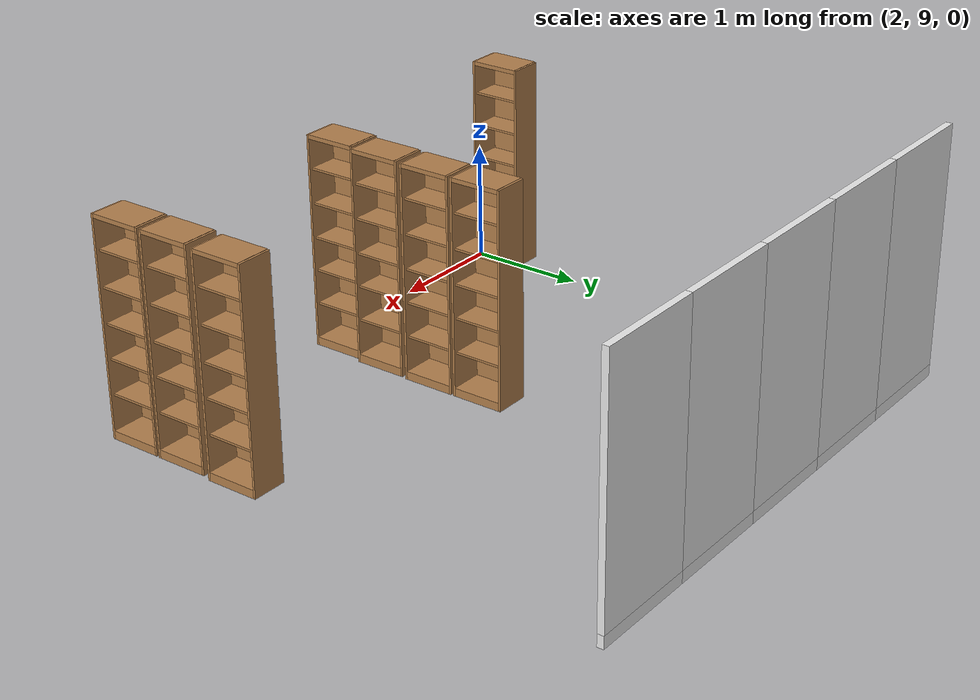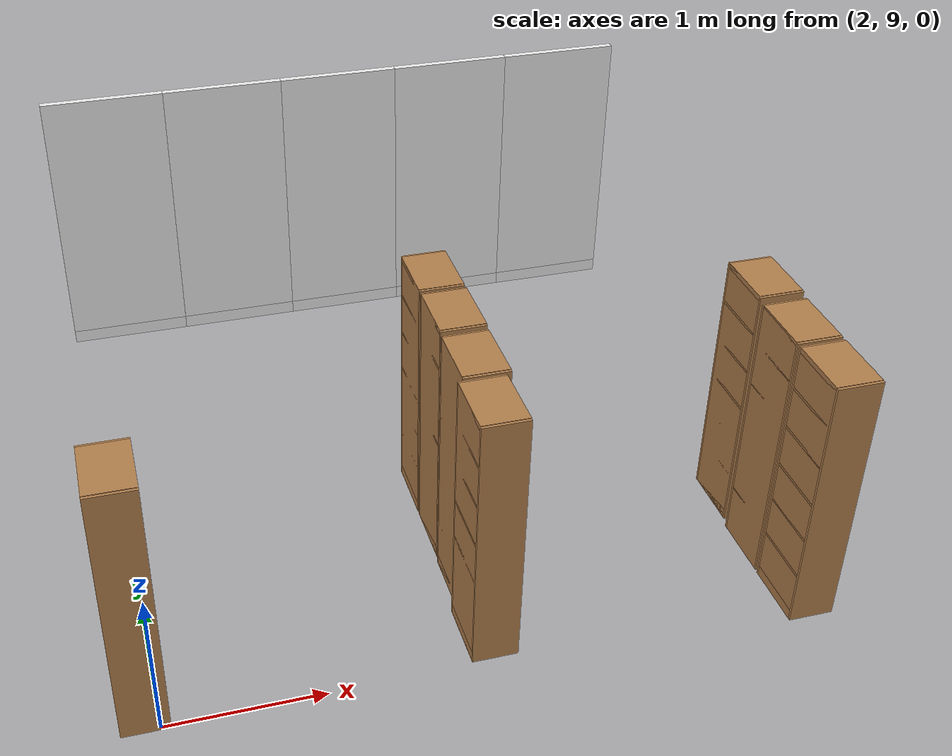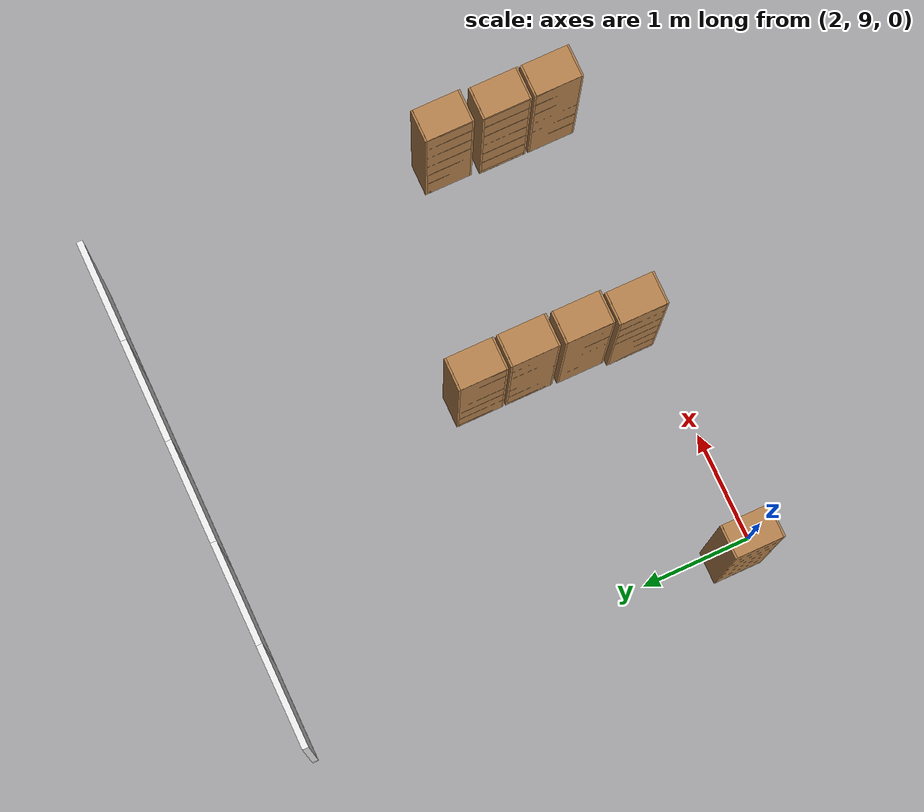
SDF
<sdf version="1.6">
 <world name="robocup_apartment">
  <model name="wall_x03y16">
   <link name="link">
    <inertial>
     <mass>50</mass>
     <inertia><ixx>1</ixx><ixy>0</ixy><ixz>0</ixz><iyy>1</iyy><iyz>0</iyz><izz>1</izz></inertia>
    </inertial>
    <visual name="bottom_frame">
     <pose>0 0 0.05 0 -0 0</pose>
     <geometry><box><size>0.055 0.9 0.1</size></box></geometry>
     <material>
      <script><uri>model://base_materials/color/scripts</uri><name>hsr_color/white</name></script>
     </material>
    </visual>
    <visual name="wall">
     <pose>0 0 1.095 0 -0 0</pose>
     <geometry><box><size>0.055 0.9 1.99</size></box></geometry>
     <material>
      <script>
       <uri>model://base_materials/wall/scripts</uri>
       <uri>model://base_materials/wall/textures</uri>
       <name>wall/white_noise</name>
      </script>
     </material>
    </visual>
    <velocity_decay><linear>0</linear><angular>0</angular></velocity_decay>
   </link>
   <static>1</static>
   <pose>2.25 13.2075 0 0 -0 1.5708</pose>
  </model>
  <model name="wall_x04y16">
   <link name="link">
    <inertial>
     <mass>50</mass>
     <inertia><ixx>1</ixx><ixy>0</ixy><ixz>0</ixz><iyy>1</iyy><iyz>0</iyz><izz>1</izz></inertia>
    </inertial>
    <visual name="bottom_frame">
     <pose>0 0 0.05 0 -0 0</pose>
     <geometry><box><size>0.055 0.9 0.1</size></box></geometry>
     <material>
      <script><uri>model://base_materials/color/scripts</uri><name>hsr_color/white</name></script>
     </material>
    </visual>
    <visual name="wall">
     <pose>0 0 1.095 0 -0 0</pose>
     <geometry><box><size>0.055 0.9 1.99</size></box></geometry>
     <material>
      <script>
       <uri>model://base_materials/wall/scripts</uri>
       <uri>model://base_materials/wall/textures</uri>
       <name>wall/white_noise</name>
      </script>
     </material>
    </visual>
    <velocity_decay><linear>0</linear><angular>0</angular></velocity_decay>
   </link>
   <static>1</static>
   <pose>3.15 13.2075 0 0 -0 1.5708</pose>
  </model>
  <model name="wall_x05y16">
   <link name="link">
    <inertial>
     <mass>50</mass>
     <inertia><ixx>1</ixx><ixy>0</ixy><ixz>0</ixz><iyy>1</iyy><iyz>0</iyz><izz>1</izz></inertia>
    </inertial>
    <visual name="bottom_frame">
     <pose>0 0 0.05 0 -0 0</pose>
     <geometry><box><size>0.055 0.9 0.1</size></box></geometry>
     <material>
      <script><uri>model://base_materials/color/scripts</uri><name>hsr_color/white</name></script>
     </material>
    </visual>
    <visual name="wall">
     <pose>0 0 1.095 0 -0 0</pose>
     <geometry><box><size>0.055 0.9 1.99</size></box></geometry>
     <material>
      <script>
       <uri>model://base_materials/wall/scripts</uri>
       <uri>model://base_materials/wall/textures</uri>
       <name>wall/white_noise</name>
      </script>
     </material>
    </visual>
    <velocity_decay><linear>0</linear><angular>0</angular></velocity_decay>
   </link>
   <static>1</static>
   <pose>4.05 13.2075 0 0 -0 1.5708</pose>
  </model>
  <model name="wall_x06y16">
   <link name="link">
    <inertial>
     <mass>50</mass>
     <inertia><ixx>1</ixx><ixy>0</ixy><ixz>0</ixz><iyy>1</iyy><iyz>0</iyz><izz>1</izz></inertia>
    </inertial>
    <visual name="bottom_frame">
     <pose>0 0 0.05 0 -0 0</pose>
     <geometry><box><size>0.055 0.9 0.1</size></box></geometry>
     <material>
      <script><uri>model://base_materials/color/scripts</uri><name>hsr_color/white</name></script>
     </material>
    </visual>
    <visual name="wall">
     <pose>0 0 1.095 0 -0 0</pose>
     <geometry><box><size>0.055 0.9 1.99</size></box></geometry>
     <material>
      <script>
       <uri>model://base_materials/wall/scripts</uri>
       <uri>model://base_materials/wall/textures</uri>
       <name>wall/white_noise</name>
      </script>
     </material>
    </visual>
    <velocity_decay><linear>0</linear><angular>0</angular></velocity_decay>
   </link>
   <static>1</static>
   <pose>4.95 13.2075 0 0 -0 1.5708</pose>
  </model>
  <model name="wall_x07y16">
   <link name="link">
    <inertial>
     <mass>50</mass>
     <inertia><ixx>1</ixx><ixy>0</ixy><ixz>0</ixz><iyy>1</iyy><iyz>0</iyz><izz>1</izz></inertia>
    </inertial>
    <visual name="bottom_frame">
     <pose>0 0 0.05 0 -0 0</pose>
     <geometry><box><size>0.055 0.9 0.1</size></box></geometry>
     <material>
      <script><uri>model://base_materials/color/scripts</uri><name>hsr_color/white</name></script>
     </material>
    </visual>
    <visual name="wall">
     <pose>0 0 1.095 0 -0 0</pose>
     <geometry><box><size>0.055 0.9 1.99</size></box></geometry>
     <material>
      <script>
       <uri>model://base_materials/wall/scripts</uri>
       <uri>model://base_materials/wall/textures</uri>
       <name>wall/white_noise</name>
      </script>
     </material>
    </visual>
    <velocity_decay><linear>0</linear><angular>0</angular></velocity_decay>
   </link>
   <static>1</static>
   <pose>5.85 13.2075 0 0 -0 1.5708</pose>
  </model>
  <model name="high_shelf05_clone_4">
   <link name="link">
    <inertial>
     <mass>5</mass>
     <inertia><ixx>1</ixx><ixy>0</ixy><ixz>0</ixz><iyy>1</iyy><iyz>0</iyz><izz>1</izz></inertia>
    </inertial>
    <visual name="left_board">
     <pose>-0.1475 0.009 0.898 0 -0 0</pose>
     <geometry><box><size>0.295 0.018 1.796</size></box></geometry>
     <material>
      <script>
       <uri>model://base_materials/wood/scripts</uri>
       <uri>model://base_materials/wood/textures</uri>
       <name>base_materials/light_wood</name>
      </script>
     </material>
    </visual>
    <collision name="collision_left_board">
     <pose>-0.1475 0.009 0.898 0 -0 0</pose>
     <geometry><box><size>0.295 0.018 1.796</size></box></geometry>
    </collision>
    <visual name="right_board">
     <pose>-0.1475 0.441 0.898 0 -0 0</pose>
     <geometry><box><size>0.295 0.018 1.796</size></box></geometry>
     <material>
      <script>
       <uri>model://base_materials/wood/scripts</uri>
       <uri>model://base_materials/wood/textures</uri>
       <name>base_materials/light_wood</name>
      </script>
     </material>
    </visual>
    <collision name="collision_right_board">
     <pose>-0.1475 0.441 0.898 0 -0 0</pose>
     <geometry><box><size>0.295 0.018 1.796</size></box></geometry>
    </collision>
    <visual name="top_board">
     <pose>-0.1475 0.225 1.7825 0 -0 0</pose>
     <geometry><box><size>0.295 0.414 0.035</size></box></geometry>
     <material>
      <script>
       <uri>model://base_materials/wood/scripts</uri>
       <uri>model://base_materials/wood/textures</uri>
       <name>base_materials/light_wood</name>
      </script>
     </material>
    </visual>
    <collision name="collision_top_board">
     <pose>-0.1475 0.225 1.7825 0 -0 0</pose>
     <geometry><box><size>0.295 0.414 0.035</size></box></geometry>
    </collision>
    <visual name="1st_shelf">
     <pose>-0.162 0.225 1.51 0 -0 0</pose>
     <geometry><box><size>0.266 0.414 0.018</size></box></geometry>
     <material>
      <script>
       <uri>model://base_materials/wood/scripts</uri>
       <uri>model://base_materials/wood/textures</uri>
       <name>base_materials/light_wood</name>
      </script>
     </material>
    </visual>
    <collision name="collision_1st_shelf">
     <pose>-0.162 0.225 1.51 0 -0 0</pose>
     <geometry><box><size>0.266 0.414 0.018</size></box></geometry>
    </collision>
    <visual name="2nd_shelf">
     <pose>-0.162 0.225 1.22 0 -0 0</pose>
     <geometry><box><size>0.266 0.414 0.018</size></box></geometry>
     <material>
      <script>
       <uri>model://base_materials/wood/scripts</uri>
       <uri>model://base_materials/wood/textures</uri>
       <name>base_materials/light_wood</name>
      </script>
     </material>
    </visual>
    <collision name="collision_2nd_shelf">
     <pose>-0.162 0.225 1.22 0 -0 0</pose>
     <geometry><box><size>0.266 0.414 0.018</size></box></geometry>
    </collision>
    <visual name="3rd_shelf">
     <pose>-0.162 0.225 0.93 0 -0 0</pose>
     <geometry><box><size>0.266 0.414 0.018</size></box></geometry>
     <material>
      <script>
       <uri>model://base_materials/wood/scripts</uri>
       <uri>model://base_materials/wood/textures</uri>
       <name>base_materials/light_wood</name>
      </script>
     </material>
    </visual>
    <collision name="collision_3rd_shelf">
     <pose>-0.162 0.225 0.93 0 -0 0</pose>
     <geometry><box><size>0.266 0.414 0.018</size></box></geometry>
    </collision>
    <visual name="4th_shelf">
     <pose>-0.162 0.225 0.65 0 -0 0</pose>
     <geometry><box><size>0.266 0.414 0.018</size></box></geometry>
     <material>
      <script>
       <uri>model://base_materials/wood/scripts</uri>
       <uri>model://base_materials/wood/textures</uri>
       <name>base_materials/light_wood</name>
      </script>
     </material>
    </visual>
    <collision name="collision_4th_shelf">
     <pose>-0.162 0.225 0.65 0 -0 0</pose>
     <geometry><box><size>0.266 0.414 0.018</size></box></geometry>
    </collision>
    <visual name="5th_shelf">
     <pose>-0.162 0.225 0.36 0 -0 0</pose>
     <geometry><box><size>0.266 0.414 0.018</size></box></geometry>
     <material>
      <script>
       <uri>model://base_materials/wood/scripts</uri>
       <uri>model://base_materials/wood/textures</uri>
       <name>base_materials/light_wood</name>
      </script>
     </material>
    </visual>
    <collision name="collision_5th_shelf">
     <pose>-0.162 0.225 0.36 0 -0 0</pose>
     <geometry><box><size>0.266 0.414 0.018</size></box></geometry>
    </collision>
    <visual name="bottom_board">
     <pose>-0.1475 0.225 0.035 0 -0 0</pose>
     <geometry><box><size>0.295 0.414 0.07</size></box></geometry>
     <material>
      <script>
       <uri>model://base_materials/wood/scripts</uri>
       <uri>model://base_materials/wood/textures</uri>
       <name>base_materials/light_wood</name>
      </script>
     </material>
    </visual>
    <collision name="collision_bottom_board">
     <pose>-0.1475 0.225 0.035 0 -0 0</pose>
     <geometry><box><size>0.295 0.414 0.07</size></box></geometry>
    </collision>
    <visual name="back_board">
     <pose>-0.286 0.225 0.898 0 -0 0</pose>
     <geometry><box><size>0.018 0.414 1.796</size></box></geometry>
     <material>
      <script>
       <uri>model://base_materials/wood/scripts</uri>
       <uri>model://base_materials/wood/textures</uri>
       <name>base_materials/light_wood</name>
      </script>
     </material>
    </visual>
    <collision name="collision_back_board">
     <pose>-0.286 0.225 0.898 0 -0 0</pose>
     <geometry><box><size>0.018 0.414 1.796</size></box></geometry>
    </collision>
    <velocity_decay><linear>0</linear><angular>0</angular></velocity_decay>
   </link>
   <static>1</static>
   <pose>2.06128 8.98276 0 0 -0 0</pose>
  </model>
  <model name="high_shelf05_clone_7">
   <link name="link">
    <inertial>
     <mass>5</mass>
     <inertia><ixx>1</ixx><ixy>0</ixy><ixz>0</ixz><iyy>1</iyy><iyz>0</iyz><izz>1</izz></inertia>
    </inertial>
    <visual name="left_board">
     <pose>-0.1475 0.009 0.898 0 -0 0</pose>
     <geometry><box><size>0.295 0.018 1.796</size></box></geometry>
     <material>
      <script>
       <uri>model://base_materials/wood/scripts</uri>
       <uri>model://base_materials/wood/textures</uri>
       <name>base_materials/light_wood</name>
      </script>
     </material>
    </visual>
    <collision name="collision_left_board">
     <pose>-0.1475 0.009 0.898 0 -0 0</pose>
     <geometry><box><size>0.295 0.018 1.796</size></box></geometry>
    </collision>
    <visual name="right_board">
     <pose>-0.1475 0.441 0.898 0 -0 0</pose>
     <geometry><box><size>0.295 0.018 1.796</size></box></geometry>
     <material>
      <script>
       <uri>model://base_materials/wood/scripts</uri>
       <uri>model://base_materials/wood/textures</uri>
       <name>base_materials/light_wood</name>
      </script>
     </material>
    </visual>
    <collision name="collision_right_board">
     <pose>-0.1475 0.441 0.898 0 -0 0</pose>
     <geometry><box><size>0.295 0.018 1.796</size></box></geometry>
    </collision>
    <visual name="top_board">
     <pose>-0.1475 0.225 1.7825 0 -0 0</pose>
     <geometry><box><size>0.295 0.414 0.035</size></box></geometry>
     <material>
      <script>
       <uri>model://base_materials/wood/scripts</uri>
       <uri>model://base_materials/wood/textures</uri>
       <name>base_materials/light_wood</name>
      </script>
     </material>
    </visual>
    <collision name="collision_top_board">
     <pose>-0.1475 0.225 1.7825 0 -0 0</pose>
     <geometry><box><size>0.295 0.414 0.035</size></box></geometry>
    </collision>
    <visual name="1st_shelf">
     <pose>-0.162 0.225 1.51 0 -0 0</pose>
     <geometry><box><size>0.266 0.414 0.018</size></box></geometry>
     <material>
      <script>
       <uri>model://base_materials/wood/scripts</uri>
       <uri>model://base_materials/wood/textures</uri>
       <name>base_materials/light_wood</name>
      </script>
     </material>
    </visual>
    <collision name="collision_1st_shelf">
     <pose>-0.162 0.225 1.51 0 -0 0</pose>
     <geometry><box><size>0.266 0.414 0.018</size></box></geometry>
    </collision>
    <visual name="2nd_shelf">
     <pose>-0.162 0.225 1.22 0 -0 0</pose>
     <geometry><box><size>0.266 0.414 0.018</size></box></geometry>
     <material>
      <script>
       <uri>model://base_materials/wood/scripts</uri>
       <uri>model://base_materials/wood/textures</uri>
       <name>base_materials/light_wood</name>
      </script>
     </material>
    </visual>
    <collision name="collision_2nd_shelf">
     <pose>-0.162 0.225 1.22 0 -0 0</pose>
     <geometry><box><size>0.266 0.414 0.018</size></box></geometry>
    </collision>
    <visual name="3rd_shelf">
     <pose>-0.162 0.225 0.93 0 -0 0</pose>
     <geometry><box><size>0.266 0.414 0.018</size></box></geometry>
     <material>
      <script>
       <uri>model://base_materials/wood/scripts</uri>
       <uri>model://base_materials/wood/textures</uri>
       <name>base_materials/light_wood</name>
      </script>
     </material>
    </visual>
    <collision name="collision_3rd_shelf">
     <pose>-0.162 0.225 0.93 0 -0 0</pose>
     <geometry><box><size>0.266 0.414 0.018</size></box></geometry>
    </collision>
    <visual name="4th_shelf">
     <pose>-0.162 0.225 0.65 0 -0 0</pose>
     <geometry><box><size>0.266 0.414 0.018</size></box></geometry>
     <material>
      <script>
       <uri>model://base_materials/wood/scripts</uri>
       <uri>model://base_materials/wood/textures</uri>
       <name>base_materials/light_wood</name>
      </script>
     </material>
    </visual>
    <collision name="collision_4th_shelf">
     <pose>-0.162 0.225 0.65 0 -0 0</pose>
     <geometry><box><size>0.266 0.414 0.018</size></box></geometry>
    </collision>
    <visual name="5th_shelf">
     <pose>-0.162 0.225 0.36 0 -0 0</pose>
     <geometry><box><size>0.266 0.414 0.018</size></box></geometry>
     <material>
      <script>
       <uri>model://base_materials/wood/scripts</uri>
       <uri>model://base_materials/wood/textures</uri>
       <name>base_materials/light_wood</name>
      </script>
     </material>
    </visual>
    <collision name="collision_5th_shelf">
     <pose>-0.162 0.225 0.36 0 -0 0</pose>
     <geometry><box><size>0.266 0.414 0.018</size></box></geometry>
    </collision>
    <visual name="bottom_board">
     <pose>-0.1475 0.225 0.035 0 -0 0</pose>
     <geometry><box><size>0.295 0.414 0.07</size></box></geometry>
     <material>
      <script>
       <uri>model://base_materials/wood/scripts</uri>
       <uri>model://base_materials/wood/textures</uri>
       <name>base_materials/light_wood</name>
      </script>
     </material>
    </visual>
    <collision name="collision_bottom_board">
     <pose>-0.1475 0.225 0.035 0 -0 0</pose>
     <geometry><box><size>0.295 0.414 0.07</size></box></geometry>
    </collision>
    <visual name="back_board">
     <pose>-0.286 0.225 0.898 0 -0 0</pose>
     <geometry><box><size>0.018 0.414 1.796</size></box></geometry>
     <material>
      <script>
       <uri>model://base_materials/wood/scripts</uri>
       <uri>model://base_materials/wood/textures</uri>
       <name>base_materials/light_wood</name>
      </script>
     </material>
    </visual>
    <collision name="collision_back_board">
     <pose>-0.286 0.225 0.898 0 -0 0</pose>
     <geometry><box><size>0.018 0.414 1.796</size></box></geometry>
    </collision>
    <velocity_decay><linear>0</linear><angular>0</angular></velocity_decay>
   </link>
   <static>1</static>
   <pose>4.23868 10.4426 0 0 -0 0</pose>
  </model>
  <model name="high_shelf05_clone_8">
   <link name="link">
    <inertial>
     <mass>5</mass>
     <inertia><ixx>1</ixx><ixy>0</ixy><ixz>0</ixz><iyy>1</iyy><iyz>0</iyz><izz>1</izz></inertia>
    </inertial>
    <visual name="left_board">
     <pose>-0.1475 0.009 0.898 0 -0 0</pose>
     <geometry><box><size>0.295 0.018 1.796</size></box></geometry>
     <material>
      <script>
       <uri>model://base_materials/wood/scripts</uri>
       <uri>model://base_materials/wood/textures</uri>
       <name>base_materials/light_wood</name>
      </script>
     </material>
    </visual>
    <collision name="collision_left_board">
     <pose>-0.1475 0.009 0.898 0 -0 0</pose>
     <geometry><box><size>0.295 0.018 1.796</size></box></geometry>
    </collision>
    <visual name="right_board">
     <pose>-0.1475 0.441 0.898 0 -0 0</pose>
     <geometry><box><size>0.295 0.018 1.796</size></box></geometry>
     <material>
      <script>
       <uri>model://base_materials/wood/scripts</uri>
       <uri>model://base_materials/wood/textures</uri>
       <name>base_materials/light_wood</name>
      </script>
     </material>
    </visual>
    <collision name="collision_right_board">
     <pose>-0.1475 0.441 0.898 0 -0 0</pose>
     <geometry><box><size>0.295 0.018 1.796</size></box></geometry>
    </collision>
    <visual name="top_board">
     <pose>-0.1475 0.225 1.7825 0 -0 0</pose>
     <geometry><box><size>0.295 0.414 0.035</size></box></geometry>
     <material>
      <script>
       <uri>model://base_materials/wood/scripts</uri>
       <uri>model://base_materials/wood/textures</uri>
       <name>base_materials/light_wood</name>
      </script>
     </material>
    </visual>
    <collision name="collision_top_board">
     <pose>-0.1475 0.225 1.7825 0 -0 0</pose>
     <geometry><box><size>0.295 0.414 0.035</size></box></geometry>
    </collision>
    <visual name="1st_shelf">
     <pose>-0.162 0.225 1.51 0 -0 0</pose>
     <geometry><box><size>0.266 0.414 0.018</size></box></geometry>
     <material>
      <script>
       <uri>model://base_materials/wood/scripts</uri>
       <uri>model://base_materials/wood/textures</uri>
       <name>base_materials/light_wood</name>
      </script>
     </material>
    </visual>
    <collision name="collision_1st_shelf">
     <pose>-0.162 0.225 1.51 0 -0 0</pose>
     <geometry><box><size>0.266 0.414 0.018</size></box></geometry>
    </collision>
    <visual name="2nd_shelf">
     <pose>-0.162 0.225 1.22 0 -0 0</pose>
     <geometry><box><size>0.266 0.414 0.018</size></box></geometry>
     <material>
      <script>
       <uri>model://base_materials/wood/scripts</uri>
       <uri>model://base_materials/wood/textures</uri>
       <name>base_materials/light_wood</name>
      </script>
     </material>
    </visual>
    <collision name="collision_2nd_shelf">
     <pose>-0.162 0.225 1.22 0 -0 0</pose>
     <geometry><box><size>0.266 0.414 0.018</size></box></geometry>
    </collision>
    <visual name="3rd_shelf">
     <pose>-0.162 0.225 0.93 0 -0 0</pose>
     <geometry><box><size>0.266 0.414 0.018</size></box></geometry>
     <material>
      <script>
       <uri>model://base_materials/wood/scripts</uri>
       <uri>model://base_materials/wood/textures</uri>
       <name>base_materials/light_wood</name>
      </script>
     </material>
    </visual>
    <collision name="collision_3rd_shelf">
     <pose>-0.162 0.225 0.93 0 -0 0</pose>
     <geometry><box><size>0.266 0.414 0.018</size></box></geometry>
    </collision>
    <visual name="4th_shelf">
     <pose>-0.162 0.225 0.65 0 -0 0</pose>
     <geometry><box><size>0.266 0.414 0.018</size></box></geometry>
     <material>
      <script>
       <uri>model://base_materials/wood/scripts</uri>
       <uri>model://base_materials/wood/textures</uri>
       <name>base_materials/light_wood</name>
      </script>
     </material>
    </visual>
    <collision name="collision_4th_shelf">
     <pose>-0.162 0.225 0.65 0 -0 0</pose>
     <geometry><box><size>0.266 0.414 0.018</size></box></geometry>
    </collision>
    <visual name="5th_shelf">
     <pose>-0.162 0.225 0.36 0 -0 0</pose>
     <geometry><box><size>0.266 0.414 0.018</size></box></geometry>
     <material>
      <script>
       <uri>model://base_materials/wood/scripts</uri>
       <uri>model://base_materials/wood/textures</uri>
       <name>base_materials/light_wood</name>
      </script>
     </material>
    </visual>
    <collision name="collision_5th_shelf">
     <pose>-0.162 0.225 0.36 0 -0 0</pose>
     <geometry><box><size>0.266 0.414 0.018</size></box></geometry>
    </collision>
    <visual name="bottom_board">
     <pose>-0.1475 0.225 0.035 0 -0 0</pose>
     <geometry><box><size>0.295 0.414 0.07</size></box></geometry>
     <material>
      <script>
       <uri>model://base_materials/wood/scripts</uri>
       <uri>model://base_materials/wood/textures</uri>
       <name>base_materials/light_wood</name>
      </script>
     </material>
    </visual>
    <collision name="collision_bottom_board">
     <pose>-0.1475 0.225 0.035 0 -0 0</pose>
     <geometry><box><size>0.295 0.414 0.07</size></box></geometry>
    </collision>
    <visual name="back_board">
     <pose>-0.286 0.225 0.898 0 -0 0</pose>
     <geometry><box><size>0.018 0.414 1.796</size></box></geometry>
     <material>
      <script>
       <uri>model://base_materials/wood/scripts</uri>
       <uri>model://base_materials/wood/textures</uri>
       <name>base_materials/light_wood</name>
      </script>
     </material>
    </visual>
    <collision name="collision_back_board">
     <pose>-0.286 0.225 0.898 0 -0 0</pose>
     <geometry><box><size>0.018 0.414 1.796</size></box></geometry>
    </collision>
    <velocity_decay><linear>0</linear><angular>0</angular></velocity_decay>
   </link>
   <static>1</static>
   <pose>4.23927 9.97199 0 0 -0 0</pose>
  </model>
  <model name="high_shelf05_clone_9">
   <link name="link">
    <inertial>
     <mass>5</mass>
     <inertia><ixx>1</ixx><ixy>0</ixy><ixz>0</ixz><iyy>1</iyy><iyz>0</iyz><izz>1</izz></inertia>
    </inertial>
    <visual name="left_board">
     <pose>-0.1475 0.009 0.898 0 -0 0</pose>
     <geometry><box><size>0.295 0.018 1.796</size></box></geometry>
     <material>
      <script>
       <uri>model://base_materials/wood/scripts</uri>
       <uri>model://base_materials/wood/textures</uri>
       <name>base_materials/light_wood</name>
      </script>
     </material>
    </visual>
    <collision name="collision_left_board">
     <pose>-0.1475 0.009 0.898 0 -0 0</pose>
     <geometry><box><size>0.295 0.018 1.796</size></box></geometry>
    </collision>
    <visual name="right_board">
     <pose>-0.1475 0.441 0.898 0 -0 0</pose>
     <geometry><box><size>0.295 0.018 1.796</size></box></geometry>
     <material>
      <script>
       <uri>model://base_materials/wood/scripts</uri>
       <uri>model://base_materials/wood/textures</uri>
       <name>base_materials/light_wood</name>
      </script>
     </material>
    </visual>
    <collision name="collision_right_board">
     <pose>-0.1475 0.441 0.898 0 -0 0</pose>
     <geometry><box><size>0.295 0.018 1.796</size></box></geometry>
    </collision>
    <visual name="top_board">
     <pose>-0.1475 0.225 1.7825 0 -0 0</pose>
     <geometry><box><size>0.295 0.414 0.035</size></box></geometry>
     <material>
      <script>
       <uri>model://base_materials/wood/scripts</uri>
       <uri>model://base_materials/wood/textures</uri>
       <name>base_materials/light_wood</name>
      </script>
     </material>
    </visual>
    <collision name="collision_top_board">
     <pose>-0.1475 0.225 1.7825 0 -0 0</pose>
     <geometry><box><size>0.295 0.414 0.035</size></box></geometry>
    </collision>
    <visual name="1st_shelf">
     <pose>-0.162 0.225 1.51 0 -0 0</pose>
     <geometry><box><size>0.266 0.414 0.018</size></box></geometry>
     <material>
      <script>
       <uri>model://base_materials/wood/scripts</uri>
       <uri>model://base_materials/wood/textures</uri>
       <name>base_materials/light_wood</name>
      </script>
     </material>
    </visual>
    <collision name="collision_1st_shelf">
     <pose>-0.162 0.225 1.51 0 -0 0</pose>
     <geometry><box><size>0.266 0.414 0.018</size></box></geometry>
    </collision>
    <visual name="2nd_shelf">
     <pose>-0.162 0.225 1.22 0 -0 0</pose>
     <geometry><box><size>0.266 0.414 0.018</size></box></geometry>
     <material>
      <script>
       <uri>model://base_materials/wood/scripts</uri>
       <uri>model://base_materials/wood/textures</uri>
       <name>base_materials/light_wood</name>
      </script>
     </material>
    </visual>
    <collision name="collision_2nd_shelf">
     <pose>-0.162 0.225 1.22 0 -0 0</pose>
     <geometry><box><size>0.266 0.414 0.018</size></box></geometry>
    </collision>
    <visual name="3rd_shelf">
     <pose>-0.162 0.225 0.93 0 -0 0</pose>
     <geometry><box><size>0.266 0.414 0.018</size></box></geometry>
     <material>
      <script>
       <uri>model://base_materials/wood/scripts</uri>
       <uri>model://base_materials/wood/textures</uri>
       <name>base_materials/light_wood</name>
      </script>
     </material>
    </visual>
    <collision name="collision_3rd_shelf">
     <pose>-0.162 0.225 0.93 0 -0 0</pose>
     <geometry><box><size>0.266 0.414 0.018</size></box></geometry>
    </collision>
    <visual name="4th_shelf">
     <pose>-0.162 0.225 0.65 0 -0 0</pose>
     <geometry><box><size>0.266 0.414 0.018</size></box></geometry>
     <material>
      <script>
       <uri>model://base_materials/wood/scripts</uri>
       <uri>model://base_materials/wood/textures</uri>
       <name>base_materials/light_wood</name>
      </script>
     </material>
    </visual>
    <collision name="collision_4th_shelf">
     <pose>-0.162 0.225 0.65 0 -0 0</pose>
     <geometry><box><size>0.266 0.414 0.018</size></box></geometry>
    </collision>
    <visual name="5th_shelf">
     <pose>-0.162 0.225 0.36 0 -0 0</pose>
     <geometry><box><size>0.266 0.414 0.018</size></box></geometry>
     <material>
      <script>
       <uri>model://base_materials/wood/scripts</uri>
       <uri>model://base_materials/wood/textures</uri>
       <name>base_materials/light_wood</name>
      </script>
     </material>
    </visual>
    <collision name="collision_5th_shelf">
     <pose>-0.162 0.225 0.36 0 -0 0</pose>
     <geometry><box><size>0.266 0.414 0.018</size></box></geometry>
    </collision>
    <visual name="bottom_board">
     <pose>-0.1475 0.225 0.035 0 -0 0</pose>
     <geometry><box><size>0.295 0.414 0.07</size></box></geometry>
     <material>
      <script>
       <uri>model://base_materials/wood/scripts</uri>
       <uri>model://base_materials/wood/textures</uri>
       <name>base_materials/light_wood</name>
      </script>
     </material>
    </visual>
    <collision name="collision_bottom_board">
     <pose>-0.1475 0.225 0.035 0 -0 0</pose>
     <geometry><box><size>0.295 0.414 0.07</size></box></geometry>
    </collision>
    <visual name="back_board">
     <pose>-0.286 0.225 0.898 0 -0 0</pose>
     <geometry><box><size>0.018 0.414 1.796</size></box></geometry>
     <material>
      <script>
       <uri>model://base_materials/wood/scripts</uri>
       <uri>model://base_materials/wood/textures</uri>
       <name>base_materials/light_wood</name>
      </script>
     </material>
    </visual>
    <collision name="collision_back_board">
     <pose>-0.286 0.225 0.898 0 -0 0</pose>
     <geometry><box><size>0.018 0.414 1.796</size></box></geometry>
    </collision>
    <velocity_decay><linear>0</linear><angular>0</angular></velocity_decay>
   </link>
   <static>1</static>
   <pose>4.2294 9.48258 0 0 -0 0</pose>
  </model>
  <model name="high_shelf05_clone_10">
   <link name="link">
    <inertial>
     <mass>5</mass>
     <inertia><ixx>1</ixx><ixy>0</ixy><ixz>0</ixz><iyy>1</iyy><iyz>0</iyz><izz>1</izz></inertia>
    </inertial>
    <visual name="left_board">
     <pose>-0.1475 0.009 0.898 0 -0 0</pose>
     <geometry><box><size>0.295 0.018 1.796</size></box></geometry>
     <material>
      <script>
       <uri>model://base_materials/wood/scripts</uri>
       <uri>model://base_materials/wood/textures</uri>
       <name>base_materials/light_wood</name>
      </script>
     </material>
    </visual>
    <collision name="collision_left_board">
     <pose>-0.1475 0.009 0.898 0 -0 0</pose>
     <geometry><box><size>0.295 0.018 1.796</size></box></geometry>
    </collision>
    <visual name="right_board">
     <pose>-0.1475 0.441 0.898 0 -0 0</pose>
     <geometry><box><size>0.295 0.018 1.796</size></box></geometry>
     <material>
      <script>
       <uri>model://base_materials/wood/scripts</uri>
       <uri>model://base_materials/wood/textures</uri>
       <name>base_materials/light_wood</name>
      </script>
     </material>
    </visual>
    <collision name="collision_right_board">
     <pose>-0.1475 0.441 0.898 0 -0 0</pose>
     <geometry><box><size>0.295 0.018 1.796</size></box></geometry>
    </collision>
    <visual name="top_board">
     <pose>-0.1475 0.225 1.7825 0 -0 0</pose>
     <geometry><box><size>0.295 0.414 0.035</size></box></geometry>
     <material>
      <script>
       <uri>model://base_materials/wood/scripts</uri>
       <uri>model://base_materials/wood/textures</uri>
       <name>base_materials/light_wood</name>
      </script>
     </material>
    </visual>
    <collision name="collision_top_board">
     <pose>-0.1475 0.225 1.7825 0 -0 0</pose>
     <geometry><box><size>0.295 0.414 0.035</size></box></geometry>
    </collision>
    <visual name="1st_shelf">
     <pose>-0.162 0.225 1.51 0 -0 0</pose>
     <geometry><box><size>0.266 0.414 0.018</size></box></geometry>
     <material>
      <script>
       <uri>model://base_materials/wood/scripts</uri>
       <uri>model://base_materials/wood/textures</uri>
       <name>base_materials/light_wood</name>
      </script>
     </material>
    </visual>
    <collision name="collision_1st_shelf">
     <pose>-0.162 0.225 1.51 0 -0 0</pose>
     <geometry><box><size>0.266 0.414 0.018</size></box></geometry>
    </collision>
    <visual name="2nd_shelf">
     <pose>-0.162 0.225 1.22 0 -0 0</pose>
     <geometry><box><size>0.266 0.414 0.018</size></box></geometry>
     <material>
      <script>
       <uri>model://base_materials/wood/scripts</uri>
       <uri>model://base_materials/wood/textures</uri>
       <name>base_materials/light_wood</name>
      </script>
     </material>
    </visual>
    <collision name="collision_2nd_shelf">
     <pose>-0.162 0.225 1.22 0 -0 0</pose>
     <geometry><box><size>0.266 0.414 0.018</size></box></geometry>
    </collision>
    <visual name="3rd_shelf">
     <pose>-0.162 0.225 0.93 0 -0 0</pose>
     <geometry><box><size>0.266 0.414 0.018</size></box></geometry>
     <material>
      <script>
       <uri>model://base_materials/wood/scripts</uri>
       <uri>model://base_materials/wood/textures</uri>
       <name>base_materials/light_wood</name>
      </script>
     </material>
    </visual>
    <collision name="collision_3rd_shelf">
     <pose>-0.162 0.225 0.93 0 -0 0</pose>
     <geometry><box><size>0.266 0.414 0.018</size></box></geometry>
    </collision>
    <visual name="4th_shelf">
     <pose>-0.162 0.225 0.65 0 -0 0</pose>
     <geometry><box><size>0.266 0.414 0.018</size></box></geometry>
     <material>
      <script>
       <uri>model://base_materials/wood/scripts</uri>
       <uri>model://base_materials/wood/textures</uri>
       <name>base_materials/light_wood</name>
      </script>
     </material>
    </visual>
    <collision name="collision_4th_shelf">
     <pose>-0.162 0.225 0.65 0 -0 0</pose>
     <geometry><box><size>0.266 0.414 0.018</size></box></geometry>
    </collision>
    <visual name="5th_shelf">
     <pose>-0.162 0.225 0.36 0 -0 0</pose>
     <geometry><box><size>0.266 0.414 0.018</size></box></geometry>
     <material>
      <script>
       <uri>model://base_materials/wood/scripts</uri>
       <uri>model://base_materials/wood/textures</uri>
       <name>base_materials/light_wood</name>
      </script>
     </material>
    </visual>
    <collision name="collision_5th_shelf">
     <pose>-0.162 0.225 0.36 0 -0 0</pose>
     <geometry><box><size>0.266 0.414 0.018</size></box></geometry>
    </collision>
    <visual name="bottom_board">
     <pose>-0.1475 0.225 0.035 0 -0 0</pose>
     <geometry><box><size>0.295 0.414 0.07</size></box></geometry>
     <material>
      <script>
       <uri>model://base_materials/wood/scripts</uri>
       <uri>model://base_materials/wood/textures</uri>
       <name>base_materials/light_wood</name>
      </script>
     </material>
    </visual>
    <collision name="collision_bottom_board">
     <pose>-0.1475 0.225 0.035 0 -0 0</pose>
     <geometry><box><size>0.295 0.414 0.07</size></box></geometry>
    </collision>
    <visual name="back_board">
     <pose>-0.286 0.225 0.898 0 -0 0</pose>
     <geometry><box><size>0.018 0.414 1.796</size></box></geometry>
     <material>
      <script>
       <uri>model://base_materials/wood/scripts</uri>
       <uri>model://base_materials/wood/textures</uri>
       <name>base_materials/light_wood</name>
      </script>
     </material>
    </visual>
    <collision name="collision_back_board">
     <pose>-0.286 0.225 0.898 0 -0 0</pose>
     <geometry><box><size>0.018 0.414 1.796</size></box></geometry>
    </collision>
    <velocity_decay><linear>0</linear><angular>0</angular></velocity_decay>
   </link>
   <static>1</static>
   <pose>4.19071 9.01591 0 0 -0 0</pose>
  </model>
  <model name="high_shelf05_clone_15">
   <link name="link">
    <inertial>
     <mass>5</mass>
     <inertia><ixx>1</ixx><ixy>0</ixy><ixz>0</ixz><iyy>1</iyy><iyz>0</iyz><izz>1</izz></inertia>
    </inertial>
    <visual name="left_board">
     <pose>-0.1475 0.009 0.898 0 -0 0</pose>
     <geometry><box><size>0.295 0.018 1.796</size></box></geometry>
     <material>
      <script>
       <uri>model://base_materials/wood/scripts</uri>
       <uri>model://base_materials/wood/textures</uri>
       <name>base_materials/light_wood</name>
      </script>
     </material>
    </visual>
    <collision name="collision_left_board">
     <pose>-0.1475 0.009 0.898 0 -0 0</pose>
     <geometry><box><size>0.295 0.018 1.796</size></box></geometry>
    </collision>
    <visual name="right_board">
     <pose>-0.1475 0.441 0.898 0 -0 0</pose>
     <geometry><box><size>0.295 0.018 1.796</size></box></geometry>
     <material>
      <script>
       <uri>model://base_materials/wood/scripts</uri>
       <uri>model://base_materials/wood/textures</uri>
       <name>base_materials/light_wood</name>
      </script>
     </material>
    </visual>
    <collision name="collision_right_board">
     <pose>-0.1475 0.441 0.898 0 -0 0</pose>
     <geometry><box><size>0.295 0.018 1.796</size></box></geometry>
    </collision>
    <visual name="top_board">
     <pose>-0.1475 0.225 1.7825 0 -0 0</pose>
     <geometry><box><size>0.295 0.414 0.035</size></box></geometry>
     <material>
      <script>
       <uri>model://base_materials/wood/scripts</uri>
       <uri>model://base_materials/wood/textures</uri>
       <name>base_materials/light_wood</name>
      </script>
     </material>
    </visual>
    <collision name="collision_top_board">
     <pose>-0.1475 0.225 1.7825 0 -0 0</pose>
     <geometry><box><size>0.295 0.414 0.035</size></box></geometry>
    </collision>
    <visual name="1st_shelf">
     <pose>-0.162 0.225 1.51 0 -0 0</pose>
     <geometry><box><size>0.266 0.414 0.018</size></box></geometry>
     <material>
      <script>
       <uri>model://base_materials/wood/scripts</uri>
       <uri>model://base_materials/wood/textures</uri>
       <name>base_materials/light_wood</name>
      </script>
     </material>
    </visual>
    <collision name="collision_1st_shelf">
     <pose>-0.162 0.225 1.51 0 -0 0</pose>
     <geometry><box><size>0.266 0.414 0.018</size></box></geometry>
    </collision>
    <visual name="2nd_shelf">
     <pose>-0.162 0.225 1.22 0 -0 0</pose>
     <geometry><box><size>0.266 0.414 0.018</size></box></geometry>
     <material>
      <script>
       <uri>model://base_materials/wood/scripts</uri>
       <uri>model://base_materials/wood/textures</uri>
       <name>base_materials/light_wood</name>
      </script>
     </material>
    </visual>
    <collision name="collision_2nd_shelf">
     <pose>-0.162 0.225 1.22 0 -0 0</pose>
     <geometry><box><size>0.266 0.414 0.018</size></box></geometry>
    </collision>
    <visual name="3rd_shelf">
     <pose>-0.162 0.225 0.93 0 -0 0</pose>
     <geometry><box><size>0.266 0.414 0.018</size></box></geometry>
     <material>
      <script>
       <uri>model://base_materials/wood/scripts</uri>
       <uri>model://base_materials/wood/textures</uri>
       <name>base_materials/light_wood</name>
      </script>
     </material>
    </visual>
    <collision name="collision_3rd_shelf">
     <pose>-0.162 0.225 0.93 0 -0 0</pose>
     <geometry><box><size>0.266 0.414 0.018</size></box></geometry>
    </collision>
    <visual name="4th_shelf">
     <pose>-0.162 0.225 0.65 0 -0 0</pose>
     <geometry><box><size>0.266 0.414 0.018</size></box></geometry>
     <material>
      <script>
       <uri>model://base_materials/wood/scripts</uri>
       <uri>model://base_materials/wood/textures</uri>
       <name>base_materials/light_wood</name>
      </script>
     </material>
    </visual>
    <collision name="collision_4th_shelf">
     <pose>-0.162 0.225 0.65 0 -0 0</pose>
     <geometry><box><size>0.266 0.414 0.018</size></box></geometry>
    </collision>
    <visual name="5th_shelf">
     <pose>-0.162 0.225 0.36 0 -0 0</pose>
     <geometry><box><size>0.266 0.414 0.018</size></box></geometry>
     <material>
      <script>
       <uri>model://base_materials/wood/scripts</uri>
       <uri>model://base_materials/wood/textures</uri>
       <name>base_materials/light_wood</name>
      </script>
     </material>
    </visual>
    <collision name="collision_5th_shelf">
     <pose>-0.162 0.225 0.36 0 -0 0</pose>
     <geometry><box><size>0.266 0.414 0.018</size></box></geometry>
    </collision>
    <visual name="bottom_board">
     <pose>-0.1475 0.225 0.035 0 -0 0</pose>
     <geometry><box><size>0.295 0.414 0.07</size></box></geometry>
     <material>
      <script>
       <uri>model://base_materials/wood/scripts</uri>
       <uri>model://base_materials/wood/textures</uri>
       <name>base_materials/light_wood</name>
      </script>
     </material>
    </visual>
    <collision name="collision_bottom_board">
     <pose>-0.1475 0.225 0.035 0 -0 0</pose>
     <geometry><box><size>0.295 0.414 0.07</size></box></geometry>
    </collision>
    <visual name="back_board">
     <pose>-0.286 0.225 0.898 0 -0 0</pose>
     <geometry><box><size>0.018 0.414 1.796</size></box></geometry>
     <material>
      <script>
       <uri>model://base_materials/wood/scripts</uri>
       <uri>model://base_materials/wood/textures</uri>
       <name>base_materials/light_wood</name>
      </script>
     </material>
    </visual>
    <collision name="collision_back_board">
     <pose>-0.286 0.225 0.898 0 -0 0</pose>
     <geometry><box><size>0.018 0.414 1.796</size></box></geometry>
    </collision>
    <velocity_decay><linear>0</linear><angular>0</angular></velocity_decay>
   </link>
   <static>1</static>
   <pose>6.25465 9.82512 0 0 -0 0</pose>
  </model>
  <model name="high_shelf05_clone_16">
   <link name="link">
    <inertial>
     <mass>5</mass>
     <inertia><ixx>1</ixx><ixy>0</ixy><ixz>0</ixz><iyy>1</iyy><iyz>0</iyz><izz>1</izz></inertia>
    </inertial>
    <visual name="left_board">
     <pose>-0.1475 0.009 0.898 0 -0 0</pose>
     <geometry><box><size>0.295 0.018 1.796</size></box></geometry>
     <material>
      <script>
       <uri>model://base_materials/wood/scripts</uri>
       <uri>model://base_materials/wood/textures</uri>
       <name>base_materials/light_wood</name>
      </script>
     </material>
    </visual>
    <collision name="collision_left_board">
     <pose>-0.1475 0.009 0.898 0 -0 0</pose>
     <geometry><box><size>0.295 0.018 1.796</size></box></geometry>
    </collision>
    <visual name="right_board">
     <pose>-0.1475 0.441 0.898 0 -0 0</pose>
     <geometry><box><size>0.295 0.018 1.796</size></box></geometry>
     <material>
      <script>
       <uri>model://base_materials/wood/scripts</uri>
       <uri>model://base_materials/wood/textures</uri>
       <name>base_materials/light_wood</name>
      </script>
     </material>
    </visual>
    <collision name="collision_right_board">
     <pose>-0.1475 0.441 0.898 0 -0 0</pose>
     <geometry><box><size>0.295 0.018 1.796</size></box></geometry>
    </collision>
    <visual name="top_board">
     <pose>-0.1475 0.225 1.7825 0 -0 0</pose>
     <geometry><box><size>0.295 0.414 0.035</size></box></geometry>
     <material>
      <script>
       <uri>model://base_materials/wood/scripts</uri>
       <uri>model://base_materials/wood/textures</uri>
       <name>base_materials/light_wood</name>
      </script>
     </material>
    </visual>
    <collision name="collision_top_board">
     <pose>-0.1475 0.225 1.7825 0 -0 0</pose>
     <geometry><box><size>0.295 0.414 0.035</size></box></geometry>
    </collision>
    <visual name="1st_shelf">
     <pose>-0.162 0.225 1.51 0 -0 0</pose>
     <geometry><box><size>0.266 0.414 0.018</size></box></geometry>
     <material>
      <script>
       <uri>model://base_materials/wood/scripts</uri>
       <uri>model://base_materials/wood/textures</uri>
       <name>base_materials/light_wood</name>
      </script>
     </material>
    </visual>
    <collision name="collision_1st_shelf">
     <pose>-0.162 0.225 1.51 0 -0 0</pose>
     <geometry><box><size>0.266 0.414 0.018</size></box></geometry>
    </collision>
    <visual name="2nd_shelf">
     <pose>-0.162 0.225 1.22 0 -0 0</pose>
     <geometry><box><size>0.266 0.414 0.018</size></box></geometry>
     <material>
      <script>
       <uri>model://base_materials/wood/scripts</uri>
       <uri>model://base_materials/wood/textures</uri>
       <name>base_materials/light_wood</name>
      </script>
     </material>
    </visual>
    <collision name="collision_2nd_shelf">
     <pose>-0.162 0.225 1.22 0 -0 0</pose>
     <geometry><box><size>0.266 0.414 0.018</size></box></geometry>
    </collision>
    <visual name="3rd_shelf">
     <pose>-0.162 0.225 0.93 0 -0 0</pose>
     <geometry><box><size>0.266 0.414 0.018</size></box></geometry>
     <material>
      <script>
       <uri>model://base_materials/wood/scripts</uri>
       <uri>model://base_materials/wood/textures</uri>
       <name>base_materials/light_wood</name>
      </script>
     </material>
    </visual>
    <collision name="collision_3rd_shelf">
     <pose>-0.162 0.225 0.93 0 -0 0</pose>
     <geometry><box><size>0.266 0.414 0.018</size></box></geometry>
    </collision>
    <visual name="4th_shelf">
     <pose>-0.162 0.225 0.65 0 -0 0</pose>
     <geometry><box><size>0.266 0.414 0.018</size></box></geometry>
     <material>
      <script>
       <uri>model://base_materials/wood/scripts</uri>
       <uri>model://base_materials/wood/textures</uri>
       <name>base_materials/light_wood</name>
      </script>
     </material>
    </visual>
    <collision name="collision_4th_shelf">
     <pose>-0.162 0.225 0.65 0 -0 0</pose>
     <geometry><box><size>0.266 0.414 0.018</size></box></geometry>
    </collision>
    <visual name="5th_shelf">
     <pose>-0.162 0.225 0.36 0 -0 0</pose>
     <geometry><box><size>0.266 0.414 0.018</size></box></geometry>
     <material>
      <script>
       <uri>model://base_materials/wood/scripts</uri>
       <uri>model://base_materials/wood/textures</uri>
       <name>base_materials/light_wood</name>
      </script>
     </material>
    </visual>
    <collision name="collision_5th_shelf">
     <pose>-0.162 0.225 0.36 0 -0 0</pose>
     <geometry><box><size>0.266 0.414 0.018</size></box></geometry>
    </collision>
    <visual name="bottom_board">
     <pose>-0.1475 0.225 0.035 0 -0 0</pose>
     <geometry><box><size>0.295 0.414 0.07</size></box></geometry>
     <material>
      <script>
       <uri>model://base_materials/wood/scripts</uri>
       <uri>model://base_materials/wood/textures</uri>
       <name>base_materials/light_wood</name>
      </script>
     </material>
    </visual>
    <collision name="collision_bottom_board">
     <pose>-0.1475 0.225 0.035 0 -0 0</pose>
     <geometry><box><size>0.295 0.414 0.07</size></box></geometry>
    </collision>
    <visual name="back_board">
     <pose>-0.286 0.225 0.898 0 -0 0</pose>
     <geometry><box><size>0.018 0.414 1.796</size></box></geometry>
     <material>
      <script>
       <uri>model://base_materials/wood/scripts</uri>
       <uri>model://base_materials/wood/textures</uri>
       <name>base_materials/light_wood</name>
      </script>
     </material>
    </visual>
    <collision name="collision_back_board">
     <pose>-0.286 0.225 0.898 0 -0 0</pose>
     <geometry><box><size>0.018 0.414 1.796</size></box></geometry>
    </collision>
    <velocity_decay><linear>0</linear><angular>0</angular></velocity_decay>
   </link>
   <static>1</static>
   <pose>6.23158 9.30844 0 0 -0 0</pose>
  </model>
  <model name="high_shelf05_clone_17">
   <link name="link">
    <inertial>
     <mass>5</mass>
     <inertia><ixx>1</ixx><ixy>0</ixy><ixz>0</ixz><iyy>1</iyy><iyz>0</iyz><izz>1</izz></inertia>
    </inertial>
    <visual name="left_board">
     <pose>-0.1475 0.009 0.898 0 -0 0</pose>
     <geometry><box><size>0.295 0.018 1.796</size></box></geometry>
     <material>
      <script>
       <uri>model://base_materials/wood/scripts</uri>
       <uri>model://base_materials/wood/textures</uri>
       <name>base_materials/light_wood</name>
      </script>
     </material>
    </visual>
    <collision name="collision_left_board">
     <pose>-0.1475 0.009 0.898 0 -0 0</pose>
     <geometry><box><size>0.295 0.018 1.796</size></box></geometry>
    </collision>
    <visual name="right_board">
     <pose>-0.1475 0.441 0.898 0 -0 0</pose>
     <geometry><box><size>0.295 0.018 1.796</size></box></geometry>
     <material>
      <script>
       <uri>model://base_materials/wood/scripts</uri>
       <uri>model://base_materials/wood/textures</uri>
       <name>base_materials/light_wood</name>
      </script>
     </material>
    </visual>
    <collision name="collision_right_board">
     <pose>-0.1475 0.441 0.898 0 -0 0</pose>
     <geometry><box><size>0.295 0.018 1.796</size></box></geometry>
    </collision>
    <visual name="top_board">
     <pose>-0.1475 0.225 1.7825 0 -0 0</pose>
     <geometry><box><size>0.295 0.414 0.035</size></box></geometry>
     <material>
      <script>
       <uri>model://base_materials/wood/scripts</uri>
       <uri>model://base_materials/wood/textures</uri>
       <name>base_materials/light_wood</name>
      </script>
     </material>
    </visual>
    <collision name="collision_top_board">
     <pose>-0.1475 0.225 1.7825 0 -0 0</pose>
     <geometry><box><size>0.295 0.414 0.035</size></box></geometry>
    </collision>
    <visual name="1st_shelf">
     <pose>-0.162 0.225 1.51 0 -0 0</pose>
     <geometry><box><size>0.266 0.414 0.018</size></box></geometry>
     <material>
      <script>
       <uri>model://base_materials/wood/scripts</uri>
       <uri>model://base_materials/wood/textures</uri>
       <name>base_materials/light_wood</name>
      </script>
     </material>
    </visual>
    <collision name="collision_1st_shelf">
     <pose>-0.162 0.225 1.51 0 -0 0</pose>
     <geometry><box><size>0.266 0.414 0.018</size></box></geometry>
    </collision>
    <visual name="2nd_shelf">
     <pose>-0.162 0.225 1.22 0 -0 0</pose>
     <geometry><box><size>0.266 0.414 0.018</size></box></geometry>
     <material>
      <script>
       <uri>model://base_materials/wood/scripts</uri>
       <uri>model://base_materials/wood/textures</uri>
       <name>base_materials/light_wood</name>
      </script>
     </material>
    </visual>
    <collision name="collision_2nd_shelf">
     <pose>-0.162 0.225 1.22 0 -0 0</pose>
     <geometry><box><size>0.266 0.414 0.018</size></box></geometry>
    </collision>
    <visual name="3rd_shelf">
     <pose>-0.162 0.225 0.93 0 -0 0</pose>
     <geometry><box><size>0.266 0.414 0.018</size></box></geometry>
     <material>
      <script>
       <uri>model://base_materials/wood/scripts</uri>
       <uri>model://base_materials/wood/textures</uri>
       <name>base_materials/light_wood</name>
      </script>
     </material>
    </visual>
    <collision name="collision_3rd_shelf">
     <pose>-0.162 0.225 0.93 0 -0 0</pose>
     <geometry><box><size>0.266 0.414 0.018</size></box></geometry>
    </collision>
    <visual name="4th_shelf">
     <pose>-0.162 0.225 0.65 0 -0 0</pose>
     <geometry><box><size>0.266 0.414 0.018</size></box></geometry>
     <material>
      <script>
       <uri>model://base_materials/wood/scripts</uri>
       <uri>model://base_materials/wood/textures</uri>
       <name>base_materials/light_wood</name>
      </script>
     </material>
    </visual>
    <collision name="collision_4th_shelf">
     <pose>-0.162 0.225 0.65 0 -0 0</pose>
     <geometry><box><size>0.266 0.414 0.018</size></box></geometry>
    </collision>
    <visual name="5th_shelf">
     <pose>-0.162 0.225 0.36 0 -0 0</pose>
     <geometry><box><size>0.266 0.414 0.018</size></box></geometry>
     <material>
      <script>
       <uri>model://base_materials/wood/scripts</uri>
       <uri>model://base_materials/wood/textures</uri>
       <name>base_materials/light_wood</name>
      </script>
     </material>
    </visual>
    <collision name="collision_5th_shelf">
     <pose>-0.162 0.225 0.36 0 -0 0</pose>
     <geometry><box><size>0.266 0.414 0.018</size></box></geometry>
    </collision>
    <visual name="bottom_board">
     <pose>-0.1475 0.225 0.035 0 -0 0</pose>
     <geometry><box><size>0.295 0.414 0.07</size></box></geometry>
     <material>
      <script>
       <uri>model://base_materials/wood/scripts</uri>
       <uri>model://base_materials/wood/textures</uri>
       <name>base_materials/light_wood</name>
      </script>
     </material>
    </visual>
    <collision name="collision_bottom_board">
     <pose>-0.1475 0.225 0.035 0 -0 0</pose>
     <geometry><box><size>0.295 0.414 0.07</size></box></geometry>
    </collision>
    <visual name="back_board">
     <pose>-0.286 0.225 0.898 0 -0 0</pose>
     <geometry><box><size>0.018 0.414 1.796</size></box></geometry>
     <material>
      <script>
       <uri>model://base_materials/wood/scripts</uri>
       <uri>model://base_materials/wood/textures</uri>
       <name>base_materials/light_wood</name>
      </script>
     </material>
    </visual>
    <collision name="collision_back_board">
     <pose>-0.286 0.225 0.898 0 -0 0</pose>
     <geometry><box><size>0.018 0.414 1.796</size></box></geometry>
    </collision>
    <velocity_decay><linear>0</linear><angular>0</angular></velocity_decay>
   </link>
   <static>1</static>
   <pose>6.22922 8.83716 0 0 -0 0</pose>
  </model>
 </world>
</sdf>
